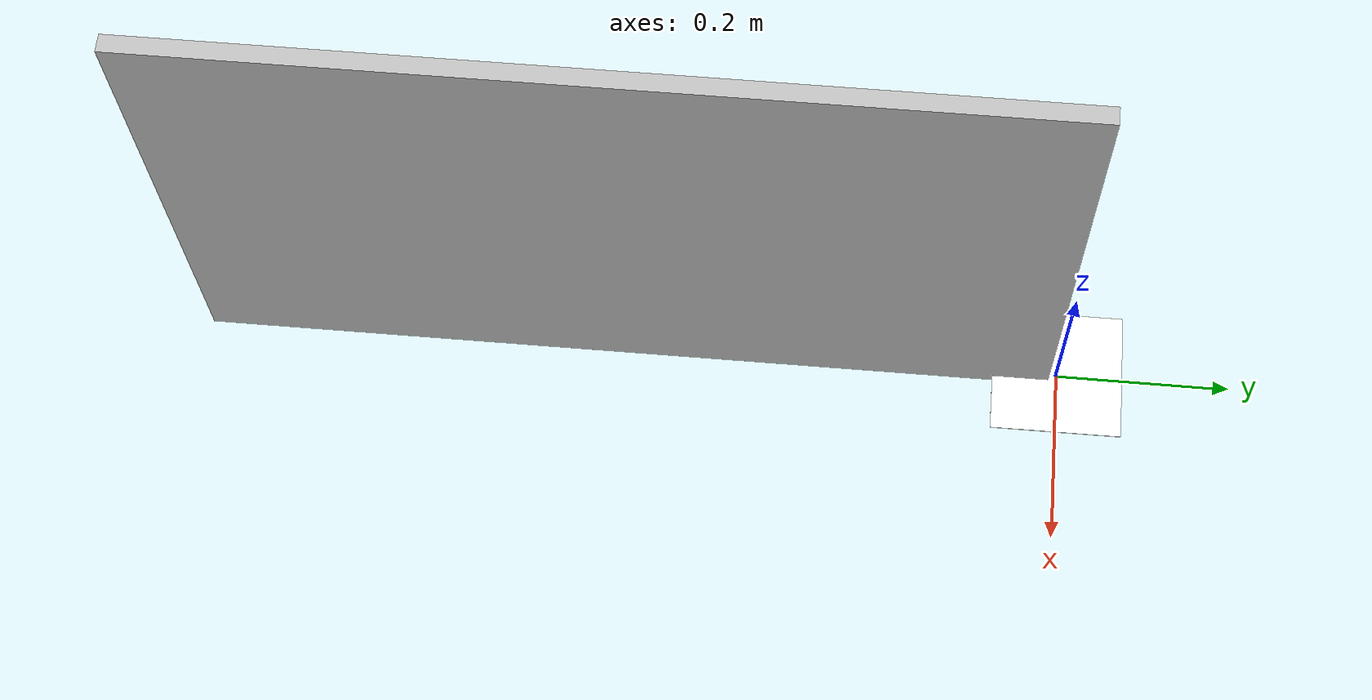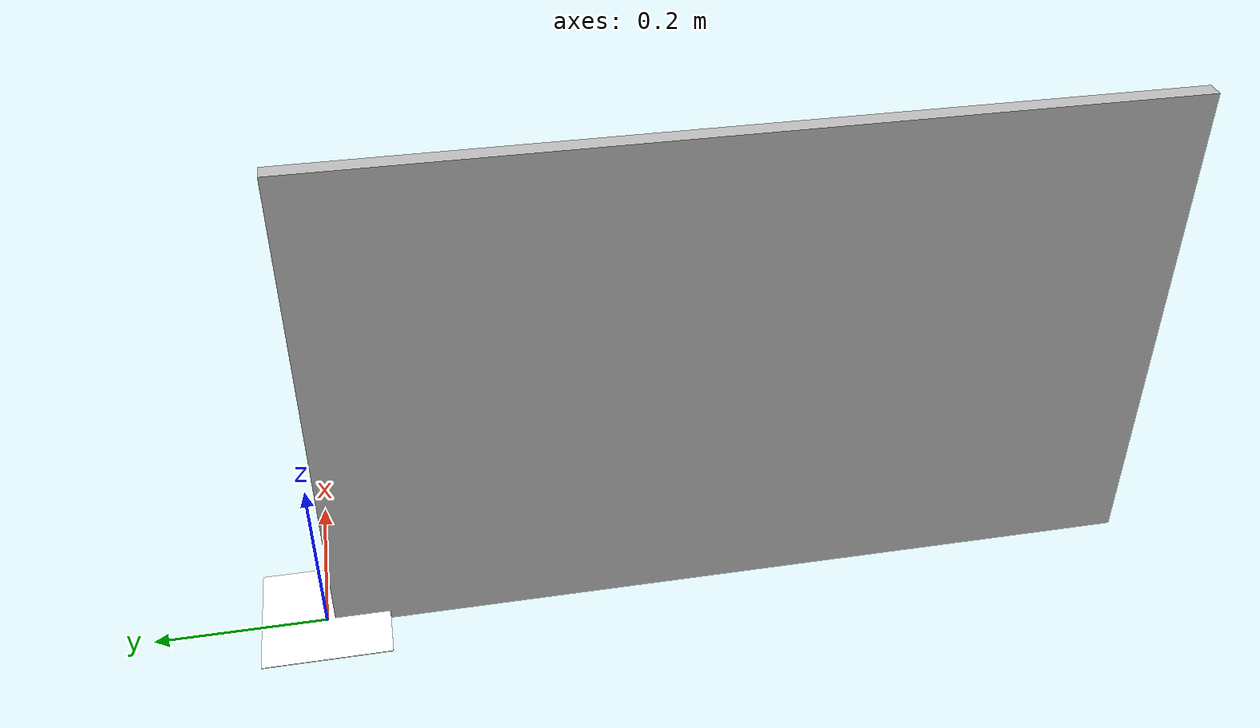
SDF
<?xml version='1.0'?>
<sdf version="1.4">
    <model name="plywood_panel_tag">
        <static>true</static>

        <link name="main">
            <pose>0 0 0 0 0 0</pose>
            <collision name="collision">
                <pose>0.0 -0.5 0.3 -1.571 0 -1.571</pose>
                <geometry>
                    <box>
                        <size>0.98 0.6 0.02</size>
                    </box>
                </geometry>
            </collision>

            <visual name="visual">
                <!-- offset origin to align to the center of one grid edge and rotate to vertical position -->
                <pose>0.01 -0.01 0 0 -1.571 0</pose>
                <geometry>
                    <mesh>
                        <scale>1.0 1.0 1.0</scale>
                        <!-- measures 0.98 x 0.6 x 0.02 mt, origin is at one corner of the panel -->
                        <uri>model://plywood_panel/meshes/plywood.dae</uri>
                    </mesh>
                </geometry>
            </visual>

            <!-- AR Tag visual -->
            <visual name="ar_tag">
                <!-- Place tag at center of one face, slightly offset in z to avoid z-fighting -->
                <pose>0 0 0.011 0 0 0</pose>
                <geometry>
                    <box>
                        <size>0.15 0.15 0.001</size>
                    </box>
                </geometry>
                <material>
                    <script>
                        <uri>model://plywood_panel _tag/textures</uri>
                        <name>5x5_1000-23.png</name>
                    </script>
                    <ambient>1 1 1 1</ambient>
                    <diffuse>1 1 1 1</diffuse>
                </material>
            </visual>
        </link>

    </model>
</sdf>
